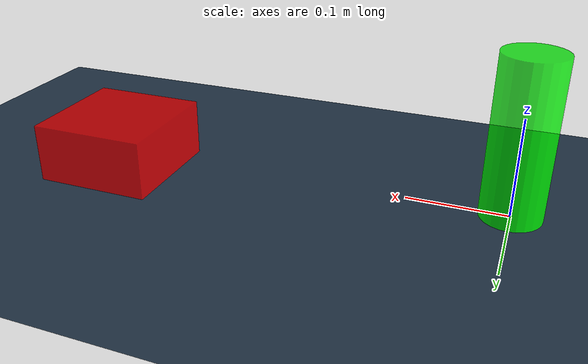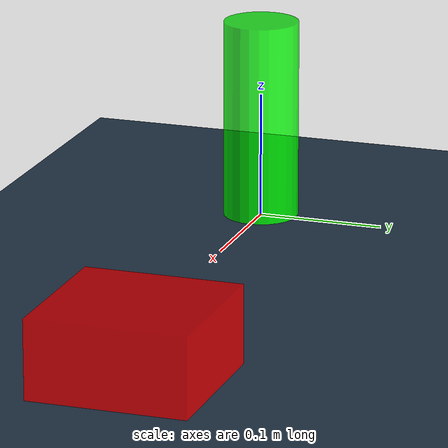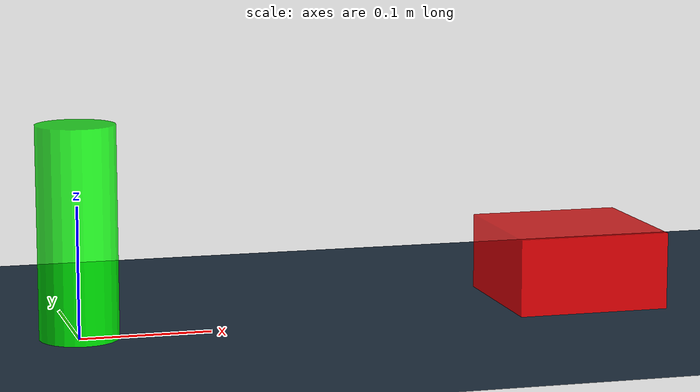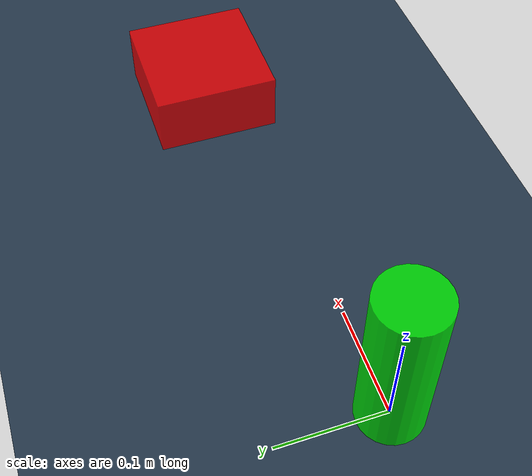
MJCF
<mujoco model="Two_Boxes">

	<compiler angle="radian"/>
	<option timestep="0.002" noslip_iterations="20"/>
	<size nuser_actuator="5"/>

	<asset>
		<texture name="texplane" type="2d" builtin="checker" rgb1=".2 .3 .4" rgb2=".1 0.15 0.2"
				 width="512" height="512"/>
		<material name="MatGnd" reflectance="0.5" texture="texplane" texrepeat="1 1" texuniform="true"/>
	</asset>

	<worldbody>
		<light directional="false" diffuse=".8 .8 .8" specular="0.3 0.3 0.3" pos="1  1 3" dir="-1 -1 -3"/>
		<light directional="false" diffuse=".8 .8 .8" specular="0.3 0.3 0.3" pos="1 -1 3" dir="-1 1 -3"/>
		<light directional="false" diffuse=".8 .8 .8" specular="0.3 0.3 0.3" pos="-1 0 3" dir="1 0 -3" />
		<geom name="ground" pos="0 0 0" size="5 5 10" material="MatGnd" type="plane" contype="1" conaffinity="1"/>
	</worldbody>

    <compiler meshdir=""/>

    <worldbody>

		<body pos="0 0 0.081" name="actuated_box">
			<joint name="actuatedBox" type="free"/>
			<!-- solimp="0.95 0.99 0.0001 0.9 6" solref = "0.2 1" -->
			<geom type = "cylinder" pos = "0 0 0" size = "0.03 0.08" mass="10" rgba = "0 1 0 0.8" solimp="0.9 0.95 0.001 0.5 2" solref = "0.2 1" friction = "0 0 0" margin = "0.001"/>

		</body>

		<!-- solimp="0 0.4 0.001 0.1 1" solref = "0.02 1" " -->
		<body pos="0.4 0.04 0.031" name="unactuated_box">
			<joint type="free" />
			<!-- solimp="0.95 0.99 0.0001 0.9 6"  -->
			<geom type = "box" pos = "0 0 0" size = "0.06 0.06 0.03" mass="0.1" rgba = "1 0 0 0.8" solimp="0.9 0.95 0.001 0.5 2" solref = "0.02 1" friction = "0.01 0.01 0.01"  margin = "0.001"/>

		</body>

    </worldbody>

	<!-- for free joints, you need to specify the axis that the motor is acting on -->
	<actuator>
		<motor name="actuatedBoxX" joint="actuatedBox" gear="1 0 0 0 0 0" ctrllimited="true" ctrlrange="-100 100"/>
		<motor name="actuatedBoxY" joint="actuatedBox" gear="0 1 0 0 0 0" ctrllimited="true" ctrlrange="-100 100"/>
	</actuator>

</mujoco>
